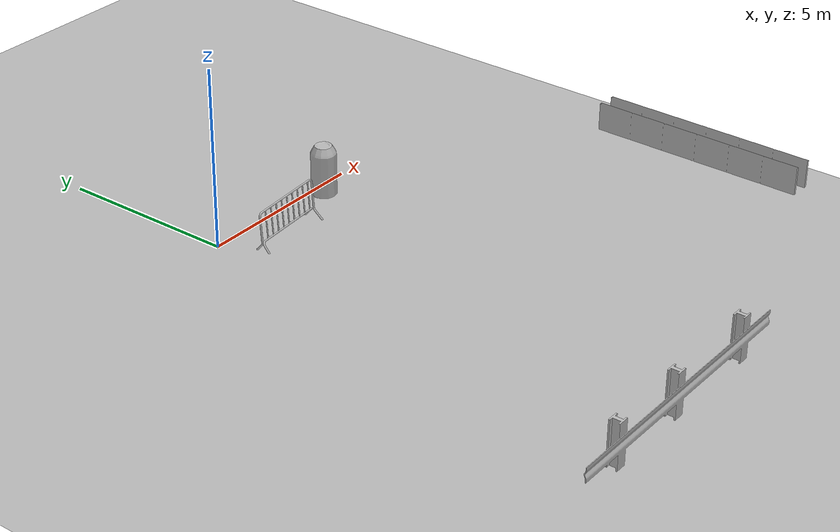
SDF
<sdf version="1.7">
 <world name="default">
  <model name="aws_robomaker_racetrack_CrashworthBucket_01_27">
   <frame name="aws_CrashworthBucket_01::__model__" attached_to="aws_CrashworthBucket_01::body">
    <pose relative_to="__model__">0 0 0 0 -0 0</pose>
   </frame>
   <link name="aws_CrashworthBucket_01::body">
    <pose relative_to="aws_CrashworthBucket_01::__model__">0 0 0 0 -0 0</pose>
    <inertial>
     <mass>5</mass>
     <inertia><ixx>1</ixx><ixy>0</ixy><ixz>0</ixz><iyy>1</iyy><iyz>0</iyz><izz>1</izz></inertia>
    </inertial>
    <visual name="visual">
     <geometry>
      <mesh>
       <uri>file://models/aws_robomaker_racetrack_CrashworthBucket_01/meshes/aws_CrashworthBucket_01_visual.DAE</uri>
      </mesh>
     </geometry>
     <material><shader type="pixel"><normal_map>__default__</normal_map></shader></material>
     <meta><layer>0</layer></meta>
    </visual>
    <collision name="collision_0">
     <geometry>
      <mesh>
       <uri>file://models/aws_robomaker_racetrack_CrashworthBucket_01/meshes/aws_CrashworthBucket_01_collision.DAE</uri>
       <scale>1 1 1</scale>
      </mesh>
     </geometry>
     <surface>
      <friction>
       <ode><mu>1</mu><mu2>1</mu2><fdir1>0 0 0</fdir1><slip1>0</slip1><slip2>0</slip2></ode>
       <torsional>
        <coefficient>1</coefficient>
        <patch_radius>0</patch_radius>
        <surface_radius>0</surface_radius>
        <use_patch_radius>1</use_patch_radius>
        <ode><slip>0</slip></ode>
       </torsional>
      </friction>
      <bounce><restitution_coefficient>0</restitution_coefficient><threshold>1e+06</threshold></bounce>
      <contact>
       <collide_without_contact>0</collide_without_contact>
       <collide_without_contact_bitmask>1</collide_without_contact_bitmask>
       <collide_bitmask>1</collide_bitmask>
       <ode>
        <soft_cfm>0</soft_cfm>
        <soft_erp>0.2</soft_erp>
        <kp>1e+13</kp>
        <kd>1</kd>
        <max_vel>0.01</max_vel>
        <min_depth>0</min_depth>
       </ode>
       <bullet>
        <split_impulse>1</split_impulse>
        <split_impulse_penetration_threshold>-0.01</split_impulse_penetration_threshold>
        <soft_cfm>0</soft_cfm>
        <soft_erp>0.2</soft_erp>
        <kp>1e+13</kp>
        <kd>1</kd>
       </bullet>
      </contact>
     </surface>
    </collision>
   </link>
   <static>1</static>
   <pose>3.82438 -0.358379 0 0 -0 0</pose>
  </model>
  <model name="aws_robomaker_racetrack_FenceMesh_01_00">
   <frame name="aws_FenceMesh_01::__model__" attached_to="aws_FenceMesh_01::body">
    <pose relative_to="__model__">0 0 0 0 -0 0</pose>
   </frame>
   <link name="aws_FenceMesh_01::body">
    <pose relative_to="aws_FenceMesh_01::__model__">0 0 0 0 -0 0</pose>
    <inertial>
     <mass>1</mass>
     <inertia><ixx>1</ixx><ixy>0</ixy><ixz>0</ixz><iyy>1</iyy><iyz>0</iyz><izz>1</izz></inertia>
    </inertial>
    <visual name="visual">
     <geometry>
      <mesh><uri>file://models/aws_robomaker_racetrack_FenceMesh_01/meshes/aws_FenceMesh_01_visual.DAE</uri></mesh>
     </geometry>
     <material><shader type="pixel"><normal_map>__default__</normal_map></shader></material>
     <meta><layer>2</layer></meta>
    </visual>
    <collision name="collision_0">
     <geometry>
      <mesh>
       <uri>file://models/aws_robomaker_racetrack_FenceMesh_01/meshes/aws_FenceMesh_01_collision.DAE</uri>
       <scale>1 1 1</scale>
      </mesh>
     </geometry>
     <surface>
      <friction>
       <ode><mu>1</mu><mu2>1</mu2><fdir1>0 0 0</fdir1><slip1>0</slip1><slip2>0</slip2></ode>
       <torsional>
        <coefficient>1</coefficient>
        <patch_radius>0</patch_radius>
        <surface_radius>0</surface_radius>
        <use_patch_radius>1</use_patch_radius>
        <ode><slip>0</slip></ode>
       </torsional>
      </friction>
      <bounce><restitution_coefficient>0</restitution_coefficient><threshold>1e+06</threshold></bounce>
      <contact>
       <collide_without_contact>0</collide_without_contact>
       <collide_without_contact_bitmask>1</collide_without_contact_bitmask>
       <collide_bitmask>2</collide_bitmask>
       <ode>
        <soft_cfm>0</soft_cfm>
        <soft_erp>0.2</soft_erp>
        <kp>1e+13</kp>
        <kd>1</kd>
        <max_vel>0.01</max_vel>
        <min_depth>0</min_depth>
       </ode>
       <bullet>
        <split_impulse>1</split_impulse>
        <split_impulse_penetration_threshold>-0.01</split_impulse_penetration_threshold>
        <soft_cfm>0</soft_cfm>
        <soft_erp>0.2</soft_erp>
        <kp>1e+13</kp>
        <kd>1</kd>
       </bullet>
      </contact>
     </surface>
    </collision>
   </link>
   <static>1</static>
   <pose>4.2331 -11.1761 5.05223 0 0 -0.006038</pose>
  </model>
  <model name="aws_robomaker_racetrack_FenceMesh_01_03">
   <frame name="aws_FenceMesh_01::__model__" attached_to="aws_FenceMesh_01::body">
    <pose relative_to="__model__">0 0 0 0 -0 0</pose>
   </frame>
   <link name="aws_FenceMesh_01::body">
    <pose relative_to="aws_FenceMesh_01::__model__">0 0 0 0 -0 0</pose>
    <inertial>
     <mass>1</mass>
     <inertia><ixx>1</ixx><ixy>0</ixy><ixz>0</ixz><iyy>1</iyy><iyz>0</iyz><izz>1</izz></inertia>
    </inertial>
    <visual name="visual">
     <geometry>
      <mesh><uri>file://models/aws_robomaker_racetrack_FenceMesh_01/meshes/aws_FenceMesh_01_visual.DAE</uri></mesh>
     </geometry>
     <material><shader type="pixel"><normal_map>__default__</normal_map></shader></material>
     <meta><layer>2</layer></meta>
    </visual>
    <collision name="collision_0">
     <geometry>
      <mesh>
       <uri>file://models/aws_robomaker_racetrack_FenceMesh_01/meshes/aws_FenceMesh_01_collision.DAE</uri>
       <scale>1 1 1</scale>
      </mesh>
     </geometry>
     <surface>
      <friction>
       <ode><mu>1</mu><mu2>1</mu2><fdir1>0 0 0</fdir1><slip1>0</slip1><slip2>0</slip2></ode>
       <torsional>
        <coefficient>1</coefficient>
        <patch_radius>0</patch_radius>
        <surface_radius>0</surface_radius>
        <use_patch_radius>1</use_patch_radius>
        <ode><slip>0</slip></ode>
       </torsional>
      </friction>
      <bounce><restitution_coefficient>0</restitution_coefficient><threshold>1e+06</threshold></bounce>
      <contact>
       <collide_without_contact>0</collide_without_contact>
       <collide_without_contact_bitmask>1</collide_without_contact_bitmask>
       <collide_bitmask>2</collide_bitmask>
       <ode>
        <soft_cfm>0</soft_cfm>
        <soft_erp>0.2</soft_erp>
        <kp>1e+13</kp>
        <kd>1</kd>
        <max_vel>0.01</max_vel>
        <min_depth>0</min_depth>
       </ode>
       <bullet>
        <split_impulse>1</split_impulse>
        <split_impulse_penetration_threshold>-0.01</split_impulse_penetration_threshold>
        <soft_cfm>0</soft_cfm>
        <soft_erp>0.2</soft_erp>
        <kp>1e+13</kp>
        <kd>1</kd>
       </bullet>
      </contact>
     </surface>
    </collision>
   </link>
   <static>1</static>
   <pose>4.67467 -11.1966 5.05223 0 0 -0.006038</pose>
  </model>
  <model name="aws_robomaker_racetrack_Fence_01_10">
   <frame name="aws_Fence_01::__model__" attached_to="aws_Fence_01::body">
    <pose relative_to="__model__">0 0 0 0 -0 0</pose>
   </frame>
   <link name="aws_Fence_01::body">
    <pose relative_to="aws_Fence_01::__model__">0 0 0 0 -0 0</pose>
    <inertial>
     <mass>5</mass>
     <inertia><ixx>1</ixx><ixy>0</ixy><ixz>0</ixz><iyy>1</iyy><iyz>0</iyz><izz>1</izz></inertia>
    </inertial>
    <visual name="visual">
     <geometry>
      <mesh><uri>file://models/aws_robomaker_racetrack_Fence_01/meshes/aws_Fence_01_visual.DAE</uri></mesh>
     </geometry>
     <material><shader type="pixel"><normal_map>__default__</normal_map></shader></material>
     <meta><layer>0</layer></meta>
    </visual>
    <collision name="collision_0">
     <geometry>
      <mesh>
       <uri>file://models/aws_robomaker_racetrack_Fence_01/meshes/aws_Fence_01_collision.DAE</uri>
       <scale>1 1 1</scale>
      </mesh>
     </geometry>
     <surface>
      <friction>
       <ode><mu>1</mu><mu2>1</mu2><fdir1>0 0 0</fdir1><slip1>0</slip1><slip2>0</slip2></ode>
       <torsional>
        <coefficient>1</coefficient>
        <patch_radius>0</patch_radius>
        <surface_radius>0</surface_radius>
        <use_patch_radius>1</use_patch_radius>
        <ode><slip>0</slip></ode>
       </torsional>
      </friction>
      <bounce><restitution_coefficient>0</restitution_coefficient><threshold>1e+06</threshold></bounce>
      <contact>
       <collide_without_contact>0</collide_without_contact>
       <collide_without_contact_bitmask>1</collide_without_contact_bitmask>
       <collide_bitmask>1</collide_bitmask>
       <ode>
        <soft_cfm>0</soft_cfm>
        <soft_erp>0.2</soft_erp>
        <kp>1e+13</kp>
        <kd>1</kd>
        <max_vel>0.01</max_vel>
        <min_depth>0</min_depth>
       </ode>
       <bullet>
        <split_impulse>1</split_impulse>
        <split_impulse_penetration_threshold>-0.01</split_impulse_penetration_threshold>
        <soft_cfm>0</soft_cfm>
        <soft_erp>0.2</soft_erp>
        <kp>1e+13</kp>
        <kd>1</kd>
       </bullet>
      </contact>
     </surface>
    </collision>
   </link>
   <static>1</static>
   <pose>0.720398 -13.1346 0.054671 0 -0 1.57158</pose>
  </model>
  <model name="aws_robomaker_racetrack_Fence_02_12">
   <frame name="aws_Fence_02::__model__" attached_to="aws_Fence_02::body">
    <pose relative_to="__model__">0 0 0 0 -0 0</pose>
   </frame>
   <link name="aws_Fence_02::body">
    <pose relative_to="aws_Fence_02::__model__">0 0 0 0 -0 0</pose>
    <inertial>
     <mass>5</mass>
     <inertia><ixx>9.6</ixx><ixy>0</ixy><ixz>0</ixz><iyy>8.2</iyy><iyz>0</iyz><izz>2.1</izz></inertia>
    </inertial>
    <visual name="visual">
     <geometry>
      <mesh><uri>file://models/aws_robomaker_racetrack_Fence_02/meshes/aws_Fence_02_visual.DAE</uri></mesh>
     </geometry>
     <material><shader type="pixel"><normal_map>__default__</normal_map></shader></material>
     <meta><layer>0</layer></meta>
    </visual>
    <collision name="collision_0">
     <geometry>
      <mesh>
       <uri>file://models/aws_robomaker_racetrack_Fence_02/meshes/aws_Fence_02_collision.DAE</uri>
       <scale>1 1 1</scale>
      </mesh>
     </geometry>
     <surface>
      <friction>
       <ode><mu>1</mu><mu2>1</mu2><fdir1>0 0 0</fdir1><slip1>0</slip1><slip2>0</slip2></ode>
       <torsional>
        <coefficient>1</coefficient>
        <patch_radius>0</patch_radius>
        <surface_radius>0</surface_radius>
        <use_patch_radius>1</use_patch_radius>
        <ode><slip>0</slip></ode>
       </torsional>
      </friction>
      <bounce><restitution_coefficient>0</restitution_coefficient><threshold>1e+06</threshold></bounce>
      <contact>
       <collide_without_contact>0</collide_without_contact>
       <collide_without_contact_bitmask>1</collide_without_contact_bitmask>
       <collide_bitmask>1</collide_bitmask>
      </contact>
     </surface>
    </collision>
   </link>
   <static>1</static>
   <pose>1.55346 -1.06122 0 0.027241 -0.050914 -1.52112</pose>
  </model>
  <model name="aws_robomaker_racetrack_Ground_01_00">
   <frame name="aws_Ground_01::__model__" attached_to="aws_Ground_01::body">
    <pose relative_to="__model__">0 0 0 0 -0 0</pose>
   </frame>
   <link name="aws_Ground_01::body">
    <pose relative_to="aws_Ground_01::__model__">0 0 0 0 -0 0</pose>
    <inertial>
     <mass>10000</mass>
     <inertia><ixx>0</ixx><ixy>0</ixy><ixz>0</ixz><iyy>0</iyy><iyz>0</iyz><izz>0</izz></inertia>
    </inertial>
    <visual name="visual">
     <geometry>
      <mesh>
       <uri>file://models/aws_robomaker_racetrack_Ground_01/meshes/aws_Ground_01_visual.DAE</uri>
       <scale>0.09 0.06 0.2</scale>
      </mesh>
     </geometry>
     <material><shader type="pixel"><normal_map>__default__</normal_map></shader></material>
     <meta><layer>0</layer></meta>
    </visual>
    <collision name="collision_0">
     <geometry>
      <mesh>
       <uri>file://models/aws_robomaker_racetrack_Ground_01/meshes/aws_Ground_01_collision.DAE</uri>
       <scale>0.2 0.2 0.2</scale>
      </mesh>
     </geometry>
     <surface>
      <friction>
       <ode><mu>1</mu><mu2>1</mu2><fdir1>0 0 0</fdir1><slip1>0</slip1><slip2>0</slip2></ode>
       <torsional>
        <coefficient>1</coefficient>
        <patch_radius>0</patch_radius>
        <surface_radius>0</surface_radius>
        <use_patch_radius>1</use_patch_radius>
        <ode><slip>0</slip></ode>
       </torsional>
      </friction>
      <bounce><restitution_coefficient>0</restitution_coefficient><threshold>1e+06</threshold></bounce>
      <contact>
       <collide_without_contact>0</collide_without_contact>
       <collide_without_contact_bitmask>1</collide_without_contact_bitmask>
       <collide_bitmask>65535</collide_bitmask>
       <ode>
        <soft_cfm>0</soft_cfm>
        <soft_erp>0.2</soft_erp>
        <kp>1e+13</kp>
        <kd>1</kd>
        <max_vel>0.01</max_vel>
        <min_depth>0</min_depth>
       </ode>
       <bullet>
        <split_impulse>1</split_impulse>
        <split_impulse_penetration_threshold>-0.01</split_impulse_penetration_threshold>
        <soft_cfm>0</soft_cfm>
        <soft_erp>0.2</soft_erp>
        <kp>1e+13</kp>
        <kd>1</kd>
       </bullet>
      </contact>
     </surface>
    </collision>
   </link>
   <static>1</static>
   <pose>-0.795421 -1.50376 0.05 0 -0 0</pose>
  </model>
  <model name="ground_plane">
   <pose>0 0 -6.83581e+06 0 -0 0</pose>
   <link name="link">
    <pose>0 0 -1 0 -0 0</pose>
    <inertial>
     <inertia><ixx>1</ixx><ixy>0</ixy><ixz>0</ixz><iyy>1</iyy><iyz>0</iyz><izz>1</izz></inertia>
     <mass>1</mass>
    </inertial>
    <velocity>0 0 0 0 -0 0</velocity>
    <acceleration>0 0 0 0 -0 0</acceleration>
   </link>
   <scale>1 1 1</scale>
  </model>
 </world>
</sdf>
